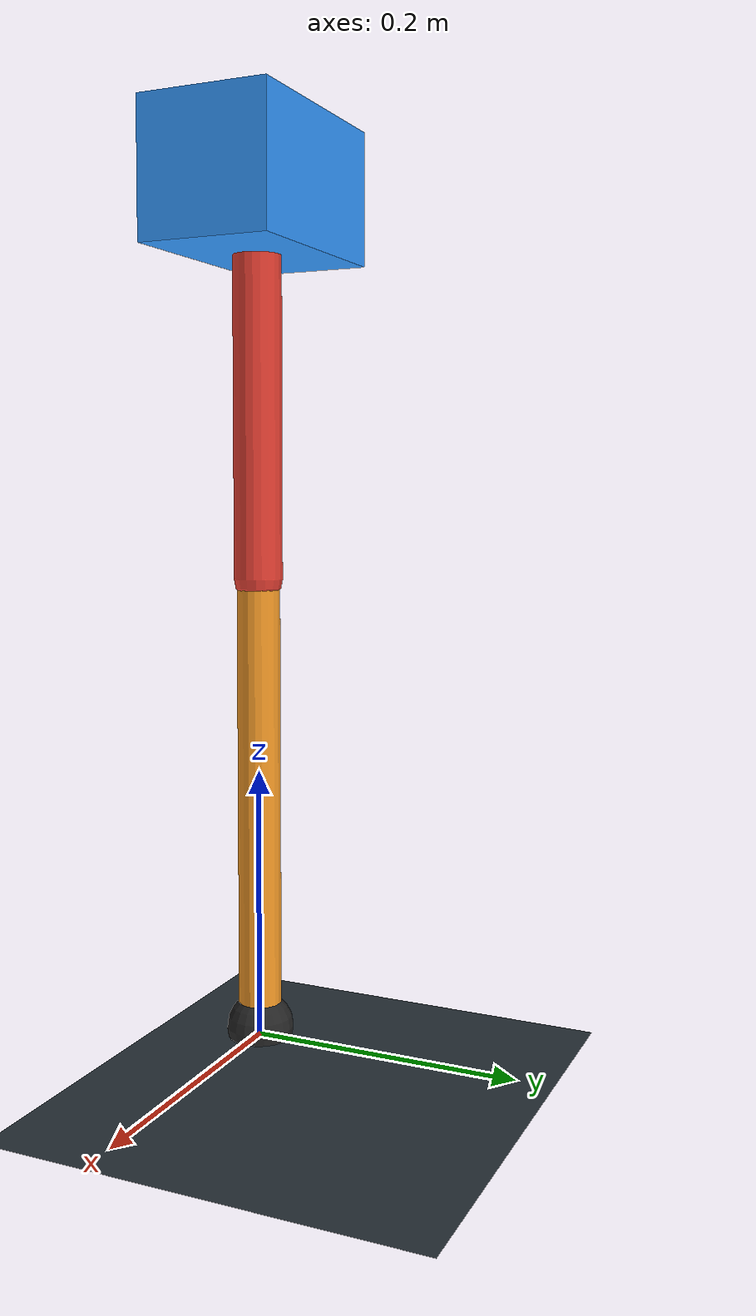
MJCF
<mujoco model="single_axis_two_bar">
  <compiler angle="radian" inertiafromgeom="true"/>
  <option timestep="0.001" integrator="implicitfast" gravity="0 0 -9.81"/>
  <default>
    <joint damping="0.08"/>
    <geom friction="1.2 0.01 0.0001" condim="3"/>
  </default>
  <worldbody>
    <geom name="floor" type="plane" size="5 5 0.1" rgba="0.18 0.22 0.25 1"/>
    <body name="carriage" pos="0 0 0.6280896423057224">
      <joint name="pole_slide" type="slide" axis="0 0 1"/>
      <geom name="payload" type="box" size="0.08 0.05 0.05" mass="3.014372582543814" rgba="0.2 0.6 1 1"/>
      <body name="thigh" pos="0 0 0">
        <joint name="hip" type="hinge" axis="0 1 0"/>
        <geom name="thigh_link" type="capsule" fromto="0 0 0 0 0 -0.2846846000523347" size="0.018" mass="0.2028415393123829" rgba="0.9 0.25 0.2 1"/>
        <body name="shank" pos="0 0 -0.2846846000523347">
          <joint name="knee" type="hinge" axis="0 1 0"/>
          <geom name="shank_link" type="capsule" fromto="0 0 0 0 0 -0.3370572992319152" size="0.016" mass="0.24015777952199574" rgba="0.95 0.6 0.15 1"/>
          <geom name="foot" type="sphere" pos="0 0 -0.3370572992319152" size="0.025" mass="0.03" rgba="0.15 0.15 0.15 1"/>
          <site name="toe" pos="0 0 -0.3370572992319152" size="0.008"/>
        </body>
      </body>
    </body>
  </worldbody>
  <actuator>
    <motor name="hip_motor" joint="hip" ctrlrange="-34.41194918983344 34.41194918983344"/>
    <motor name="knee_motor" joint="knee" ctrlrange="-101.10973287561292 101.10973287561292"/>
  </actuator>
</mujoco>
